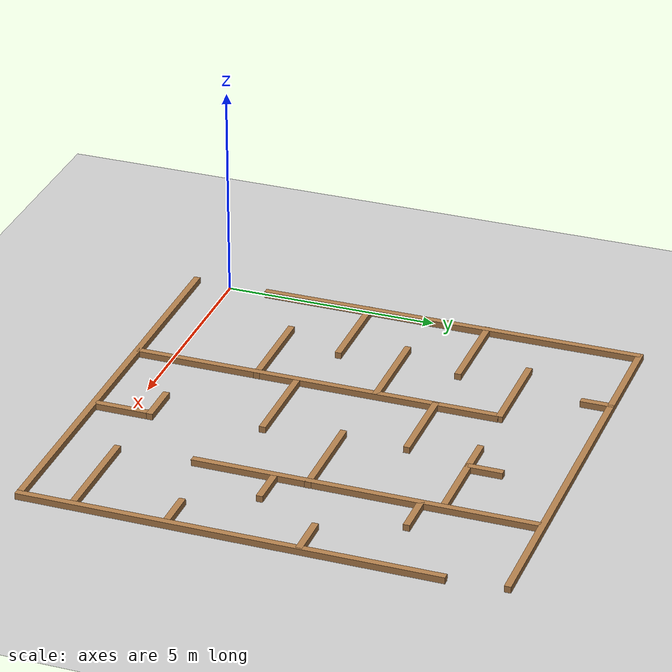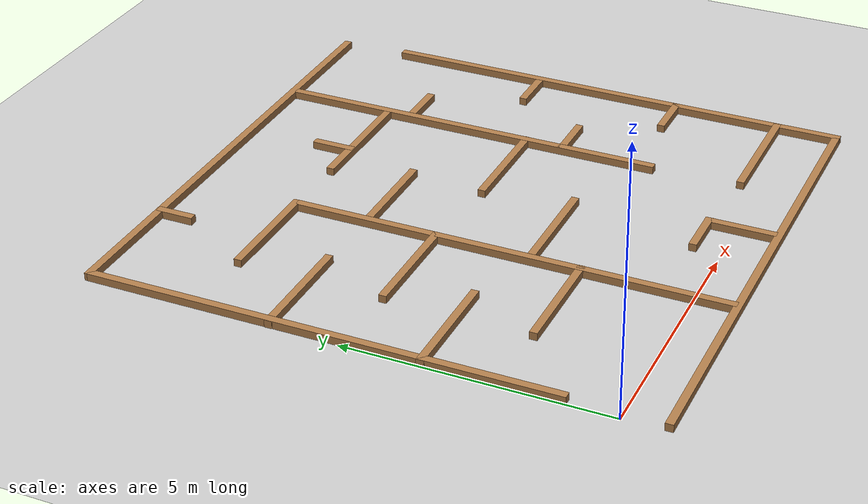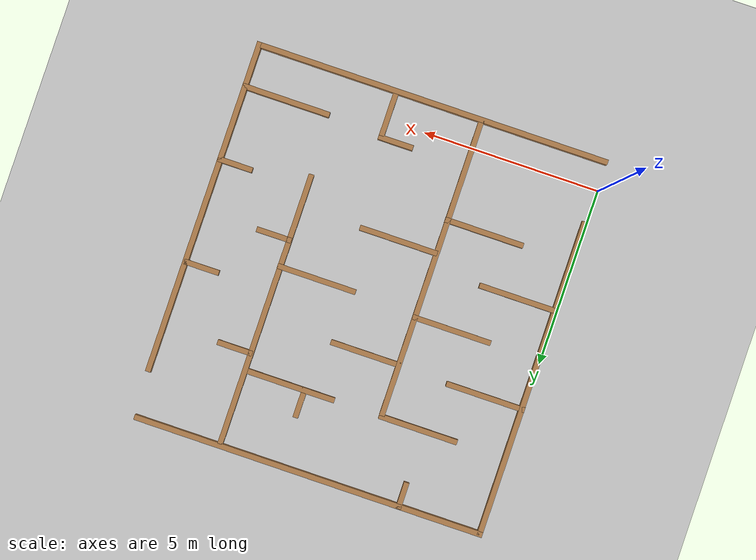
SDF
<sdf version="1.6">
 <world name="default">
  <light name="sun" type="directional">
   <pose>0 0 10 0 -0 0</pose>
   <diffuse>0.8 0.8 0.8 1</diffuse>
   <specular>0.2 0.2 0.2 1</specular>
   <attenuation>
    <range>1000</range>
    <constant>0.9</constant>
    <linear>0.01</linear>
    <quadratic>0.001</quadratic>
   </attenuation>
   <direction>-0.5 0.1 -0.9</direction>
  </light>
  <model name="ground_plane">
   <static>1</static>
   <link name="link">
    <collision name="collision">
     <geometry><plane><normal>0 0 1</normal><size>100 100</size></plane></geometry>
     <surface>
      <contact><collide_bitmask>65535</collide_bitmask></contact>
      <friction><ode><mu>100</mu><mu2>50</mu2></ode></friction>
     </surface>
    </collision>
    <visual name="visual">
     <cast_shadows>0</cast_shadows>
     <geometry><plane><normal>0 0 1</normal><size>100 100</size></plane></geometry>
     <material>
      <script><uri>file://media/materials/scripts/gazebo.material</uri><name>Gazebo/Grey</name></script>
     </material>
    </visual>
   </link>
  </model>
  <gravity>0 0 -9.8</gravity>
  <magnetic_field>6e-06 2.3e-05 -4.2e-05</magnetic_field>
  <atmosphere type="adiabatic"/>
  <physics name="default_physics" default="0" type="ode">
   <max_step_size>0.001</max_step_size>
   <real_time_factor>1</real_time_factor>
   <real_time_update_rate>1000</real_time_update_rate>
  </physics>
  <scene><ambient>0.4 0.4 0.4 1</ambient><background>0.7 0.7 0.7 1</background><shadows>1</shadows></scene>
  <audio><device>default</device></audio>
  <spherical_coordinates>
   <surface_model>EARTH_WGS84</surface_model>
   <latitude_deg>0</latitude_deg>
   <longitude_deg>0</longitude_deg>
   <elevation>0</elevation>
   <heading_deg>0</heading_deg>
  </spherical_coordinates>
  <model name="walls">
   <pose>5.06079 4.5425 0 0 -0 0</pose>
   <link name="Wall_0">
    <collision name="Wall_0_Collision">
     <geometry><box><size>10 0.15 0.15</size></box></geometry>
     <pose>0 0 0.075 0 -0 0</pose>
    </collision>
    <visual name="Wall_0_Visual">
     <pose>0 0 0.075 0 -0 0</pose>
     <geometry><box><size>10 0.15 0.15</size></box></geometry>
     <material>
      <script><uri>file://media/materials/scripts/gazebo.material</uri><name>Gazebo/Wood</name></script>
      <ambient>1 1 1 1</ambient>
     </material>
     <meta><layer>0</layer></meta>
    </visual>
    <pose>-0.055795 -5.3525 0 0 -0 0</pose>
   </link>
   <link name="Wall_10">
    <collision name="Wall_10_Collision">
     <geometry><box><size>1 0.15 0.15</size></box></geometry>
     <pose>0 0 0.075 0 -0 0</pose>
    </collision>
    <visual name="Wall_10_Visual">
     <pose>0 0 0.075 0 -0 0</pose>
     <geometry><box><size>1 0.15 0.15</size></box></geometry>
     <material>
      <script><uri>file://media/materials/scripts/gazebo.material</uri><name>Gazebo/Wood</name></script>
      <ambient>1 1 1 1</ambient>
     </material>
     <meta><layer>0</layer></meta>
    </visual>
    <pose>4.56421 -2.0375 0 0 -0 0</pose>
   </link>
   <link name="Wall_15">
    <collision name="Wall_15_Collision">
     <geometry><box><size>8.5 0.15 0.15</size></box></geometry>
     <pose>0 0 0.075 0 -0 0</pose>
    </collision>
    <visual name="Wall_15_Visual">
     <pose>0 0 0.075 0 -0 0</pose>
     <geometry><box><size>8.5 0.15 0.15</size></box></geometry>
     <material>
      <script><uri>file://media/materials/scripts/gazebo.material</uri><name>Gazebo/Wood</name></script>
      <ambient>1 1 1 1</ambient>
     </material>
     <meta><layer>0</layer></meta>
    </visual>
    <pose>-1.42979 -1.0865 0 0 -0 1.5708</pose>
   </link>
   <link name="Wall_18">
    <collision name="Wall_18_Collision">
     <geometry><box><size>2.25 0.15 0.15</size></box></geometry>
     <pose>0 0 0.075 0 -0 0</pose>
    </collision>
    <visual name="Wall_18_Visual">
     <pose>0 0 0.075 0 -0 0</pose>
     <geometry><box><size>2.25 0.15 0.15</size></box></geometry>
     <material>
      <script><uri>file://media/materials/scripts/gazebo.material</uri><name>Gazebo/Wood</name></script>
      <ambient>1 1 1 1</ambient>
     </material>
     <meta><layer>0</layer></meta>
    </visual>
    <pose>-2.4758 -2.4595 0 0 -0 0</pose>
   </link>
   <link name="Wall_2">
    <collision name="Wall_2_Collision">
     <geometry><box><size>9.0 0.15 0.15</size></box></geometry>
     <pose>0.2 0 0.075 0 -0 0</pose>
    </collision>
    <visual name="Wall_2_Visual">
     <pose>0.2 0 0.075 0 -0 0</pose>
     <geometry><box><size>9.0 0.15 0.15</size></box></geometry>
     <material>
      <script><uri>file://media/materials/scripts/gazebo.material</uri><name>Gazebo/Wood</name></script>
      <ambient>1 1 1 1</ambient>
     </material>
     <meta><layer>0</layer></meta>
    </visual>
    <pose>-4.9858 0.6765 0 0 -0 1.5708</pose>
   </link>
   <link name="Wall_20">
    <collision name="Wall_20_Collision">
     <geometry><box><size>2.25 0.15 0.15</size></box></geometry>
     <pose>0 0 0.075 0 -0 0</pose>
    </collision>
    <visual name="Wall_20_Visual">
     <pose>0 0 0.075 0 -0 0</pose>
     <geometry><box><size>2.25 0.15 0.15</size></box></geometry>
     <material>
      <script><uri>file://media/materials/scripts/gazebo.material</uri><name>Gazebo/Wood</name></script>
      <ambient>1 1 1 1</ambient>
     </material>
     <meta><layer>0</layer></meta>
    </visual>
    <pose>-3.9398 -1.0565 0 0 -0 0</pose>
   </link>
   <link name="Wall_22">
    <collision name="Wall_22_Collision">
     <geometry><box><size>2.25 0.15 0.15</size></box></geometry>
     <pose>0 0 0.075 0 -0 0</pose>
    </collision>
    <visual name="Wall_22_Visual">
     <pose>0 0 0.075 0 -0 0</pose>
     <geometry><box><size>2.25 0.15 0.15</size></box></geometry>
     <material>
      <script><uri>file://media/materials/scripts/gazebo.material</uri><name>Gazebo/Wood</name></script>
      <ambient>1 1 1 1</ambient>
     </material>
     <meta><layer>0</layer></meta>
    </visual>
    <pose>-2.4838 0.3405 0 0 -0 0</pose>
   </link>
   <link name="Wall_24">
    <collision name="Wall_24_Collision">
     <geometry><box><size>2.25 0.15 0.15</size></box></geometry>
     <pose>0 0 0.075 0 -0 0</pose>
    </collision>
    <visual name="Wall_24_Visual">
     <pose>0 0 0.075 0 -0 0</pose>
     <geometry><box><size>2.25 0.15 0.15</size></box></geometry>
     <material>
      <script><uri>file://media/materials/scripts/gazebo.material</uri><name>Gazebo/Wood</name></script>
      <ambient>1 1 1 1</ambient>
     </material>
     <meta><layer>0</layer></meta>
    </visual>
    <pose>-3.94279 1.7705 0 0 -0 0</pose>
   </link>
   <link name="Wall_26">
    <collision name="Wall_26_Collision">
     <geometry><box><size>2.25 0.15 0.15</size></box></geometry>
     <pose>0 0 0.075 0 -0 0</pose>
    </collision>
    <visual name="Wall_26_Visual">
     <pose>0 0 0.075 0 -0 0</pose>
     <geometry><box><size>2.25 0.15 0.15</size></box></geometry>
     <material>
      <script><uri>file://media/materials/scripts/gazebo.material</uri><name>Gazebo/Wood</name></script>
      <ambient>1 1 1 1</ambient>
     </material>
     <meta><layer>0</layer></meta>
    </visual>
    <pose>-2.4838 3.1905 0 0 -0 0</pose>
   </link>
   <link name="Wall_28">
    <collision name="Wall_28_Collision">
     <geometry><box><size>0.75 0.15 0.15</size></box></geometry>
     <pose>0 0 0.075 0 -0 0</pose>
    </collision>
    <visual name="Wall_28_Visual">
     <pose>0 0 0.075 0 -0 0</pose>
     <geometry><box><size>0.75 0.15 0.15</size></box></geometry>
     <material>
      <script><uri>file://media/materials/scripts/gazebo.material</uri><name>Gazebo/Wood</name></script>
      <ambient>1 1 1 1</ambient>
     </material>
     <meta><layer>0</layer></meta>
    </visual>
    <pose>-2.6578 5.0345 0 0 -0 -1.5708</pose>
   </link>
   <link name="Wall_30">
    <collision name="Wall_30_Collision">
     <geometry><box><size>2.5 0.15 0.15</size></box></geometry>
     <pose>0 0 0.075 0 -0 0</pose>
    </collision>
    <visual name="Wall_30_Visual">
     <pose>0 0 0.075 0 -0 0</pose>
     <geometry><box><size>2.5 0.15 0.15</size></box></geometry>
     <material>
      <script><uri>file://media/materials/scripts/gazebo.material</uri><name>Gazebo/Wood</name></script>
      <ambient>1 1 1 1</ambient>
     </material>
     <meta><layer>0</layer></meta>
    </visual>
    <pose>1.17121 3.1855 0 0 -0 0</pose>
   </link>
   <link name="Wall_32">
    <collision name="Wall_32_Collision">
     <geometry><box><size>0.839818 0.15 0.15</size></box></geometry>
     <pose>0 0 0.075 0 -0 0</pose>
    </collision>
    <visual name="Wall_32_Visual">
     <pose>0 0 0.075 0 -0 0</pose>
     <geometry><box><size>0.839818 0.15 0.15</size></box></geometry>
     <material>
      <script><uri>file://media/materials/scripts/gazebo.material</uri><name>Gazebo/Wood</name></script>
      <ambient>1 1 1 1</ambient>
     </material>
     <meta><layer>0</layer></meta>
    </visual>
    <pose>0.786205 3.5465 0 0 -0 1.5679</pose>
   </link>
   <link name="Wall_34">
    <collision name="Wall_34_Collision">
     <geometry><box><size>2 0.15 0.15</size></box></geometry>
     <pose>0 0 0.075 0 -0 0</pose>
    </collision>
    <visual name="Wall_34_Visual">
     <pose>0 0 0.075 0 -0 0</pose>
     <geometry><box><size>2 0.15 0.15</size></box></geometry>
     <material>
      <script><uri>file://media/materials/scripts/gazebo.material</uri><name>Gazebo/Wood</name></script>
      <ambient>1 1 1 1</ambient>
     </material>
     <meta><layer>0</layer></meta>
    </visual>
    <pose>-0.469795 1.7065 0 0 -0 0</pose>
   </link>
   <link name="Wall_36">
    <collision name="Wall_36_Collision">
     <geometry><box><size>7.75 0.15 0.15</size></box></geometry>
     <pose>0 0 0.075 0 -0 0</pose>
    </collision>
    <visual name="Wall_36_Visual">
     <pose>0 0 0.075 0 -0 0</pose>
     <geometry><box><size>7.75 0.15 0.15</size></box></geometry>
     <material>
      <script><uri>file://media/materials/scripts/gazebo.material</uri><name>Gazebo/Wood</name></script>
      <ambient>1 1 1 1</ambient>
     </material>
     <meta><layer>0</layer></meta>
    </visual>
    <pose>2.49421 1.4245 0 0 -0 -1.5708</pose>
   </link>
   <link name="Wall_38">
    <collision name="Wall_38_Collision">
     <geometry><box><size>1.25 0.15 0.15</size></box></geometry>
     <pose>0 0 0.075 0 -0 0</pose>
    </collision>
    <visual name="Wall_38_Visual">
     <pose>0 0 0.075 0 -0 0</pose>
     <geometry><box><size>1.25 0.15 0.15</size></box></geometry>
     <material>
      <script><uri>file://media/materials/scripts/gazebo.material</uri><name>Gazebo/Wood</name></script>
      <ambient>1 1 1 1</ambient>
     </material>
     <meta><layer>0</layer></meta>
    </visual>
    <pose>1.02621 -4.6855 0 0 -0 -1.5708</pose>
   </link>
   <link name="Wall_4">
    <collision name="Wall_4_Collision">
     <geometry><box><size>10 0.15 0.15</size></box></geometry>
     <pose>0 0 0.075 0 -0 0</pose>
    </collision>
    <visual name="Wall_4_Visual">
     <pose>0 0 0.075 0 -0 0</pose>
     <geometry><box><size>10 0.15 0.15</size></box></geometry>
     <material>
      <script><uri>file://media/materials/scripts/gazebo.material</uri><name>Gazebo/Wood</name></script>
      <ambient>1 1 1 1</ambient>
     </material>
     <meta><layer>0</layer></meta>
    </visual>
    <pose>-0.058795 5.3525 0 0 -0 0</pose>
   </link>
   <link name="Wall_40">
    <collision name="Wall_40_Collision">
     <geometry><box><size>2.5 0.15 0.15</size></box></geometry>
     <pose>0 0 0.075 0 -0 0</pose>
    </collision>
    <visual name="Wall_40_Visual">
     <pose>0 0 0.075 0 -0 0</pose>
     <geometry><box><size>2.5 0.15 0.15</size></box></geometry>
     <material>
      <script><uri>file://media/materials/scripts/gazebo.material</uri><name>Gazebo/Wood</name></script>
      <ambient>1 1 1 1</ambient>
     </material>
     <meta><layer>0</layer></meta>
    </visual>
    <pose>3.8042 -4.1445 0 0 -0 0</pose>
   </link>
   <link name="Wall_44">
    <collision name="Wall_44_Collision">
     <geometry><box><size>1 0.15 0.15</size></box></geometry>
     <pose>0 0 0.075 0 -0 0</pose>
    </collision>
    <visual name="Wall_44_Visual">
     <pose>0 0 0.075 0 -0 0</pose>
     <geometry><box><size>1 0.15 0.15</size></box></geometry>
     <material>
      <script><uri>file://media/materials/scripts/gazebo.material</uri><name>Gazebo/Wood</name></script>
      <ambient>1 1 1 1</ambient>
     </material>
     <meta><layer>0</layer></meta>
    </visual>
    <pose>2.93621 -0.5585 0 0 -0 0</pose>
   </link>
   <link name="Wall_46">
    <collision name="Wall_46_Collision">
     <geometry><box><size>1 0.15 0.15</size></box></geometry>
     <pose>0 0 0.075 0 -0 0</pose>
    </collision>
    <visual name="Wall_46_Visual">
     <pose>0 0 0.075 0 -0 0</pose>
     <geometry><box><size>1 0.15 0.15</size></box></geometry>
     <material>
      <script><uri>file://media/materials/scripts/gazebo.material</uri><name>Gazebo/Wood</name></script>
      <ambient>1 1 1 1</ambient>
     </material>
     <meta><layer>0</layer></meta>
    </visual>
    <pose>4.5252 0.9105 0 0 -0 0</pose>
   </link>
   <link name="Wall_48">
    <collision name="Wall_48_Collision">
     <geometry><box><size>1 0.15 0.15</size></box></geometry>
     <pose>0 0 0.075 0 -0 0</pose>
    </collision>
    <visual name="Wall_48_Visual">
     <pose>0 0 0.075 0 -0 0</pose>
     <geometry><box><size>1 0.15 0.15</size></box></geometry>
     <material>
      <script><uri>file://media/materials/scripts/gazebo.material</uri><name>Gazebo/Wood</name></script>
      <ambient>1 1 1 1</ambient>
     </material>
     <meta><layer>0</layer></meta>
    </visual>
    <pose>2.95621 2.7005 0 0 -0 0</pose>
   </link>
   <link name="Wall_50">
    <collision name="Wall_50_Collision">
     <geometry><box><size>2.25 0.15 0.15</size></box></geometry>
     <pose>0 0 0.075 0 -0 0</pose>
    </collision>
    <visual name="Wall_50_Visual">
     <pose>0 0 0.075 0 -0 0</pose>
     <geometry><box><size>2.25 0.15 0.15</size></box></geometry>
     <material>
      <script><uri>file://media/materials/scripts/gazebo.material</uri><name>Gazebo/Wood</name></script>
      <ambient>1 1 1 1</ambient>
     </material>
     <meta><layer>0</layer></meta>
    </visual>
    <pose>1.44921 0.2065 0 0 -0 0</pose>
   </link>
   <link name="Wall_52">
    <collision name="Wall_52_Collision">
     <geometry><box><size>2.25 0.15 0.15</size></box></geometry>
     <pose>0 0 0.075 0 -0 0</pose>
    </collision>
    <visual name="Wall_52_Visual">
     <pose>0 0 0.075 0 -0 0</pose>
     <geometry><box><size>2.25 0.15 0.15</size></box></geometry>
     <material>
      <script><uri>file://media/materials/scripts/gazebo.material</uri><name>Gazebo/Wood</name></script>
      <ambient>1 1 1 1</ambient>
     </material>
     <meta><layer>0</layer></meta>
    </visual>
    <pose>-0.340796 -1.5035 0 0 -0 0</pose>
   </link>
   <link name="Wall_54">
    <collision name="Wall_54_Collision">
     <geometry><box><size>1 0.15 0.15</size></box></geometry>
     <pose>0 0 0.075 0 -0 0</pose>
    </collision>
    <visual name="Wall_54_Visual">
     <pose>0 0 0.075 0 -0 0</pose>
     <geometry><box><size>1 0.15 0.15</size></box></geometry>
     <material>
      <script><uri>file://media/materials/scripts/gazebo.material</uri><name>Gazebo/Wood</name></script>
      <ambient>1 1 1 1</ambient>
     </material>
     <meta><layer>0</layer></meta>
    </visual>
    <pose>0.603205 -4.0175 0 0 -0 0</pose>
   </link>
   <link name="Wall_6">
    <collision name="Wall_6_Collision">
     <geometry><box><size>9.5 0.15 0.15</size></box></geometry>
     <pose>0 0 0.075 0 -0 0</pose>
    </collision>
    <visual name="Wall_6_Visual">
     <pose>0 0 0.075 0 -0 0</pose>
     <geometry><box><size>9.5 0.15 0.15</size></box></geometry>
     <material>
      <script><uri>file://media/materials/scripts/gazebo.material</uri><name>Gazebo/Wood</name></script>
      <ambient>1 1 1 1</ambient>
     </material>
     <meta><layer>0</layer></meta>
    </visual>
    <pose>4.9928 -0.676795 0 0 -0 1.5708</pose>
   </link>
   <static>1</static>
  </model>
 </world>
</sdf>
